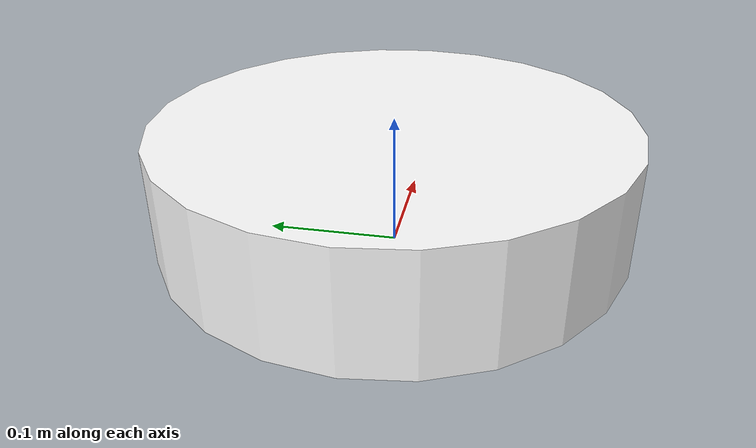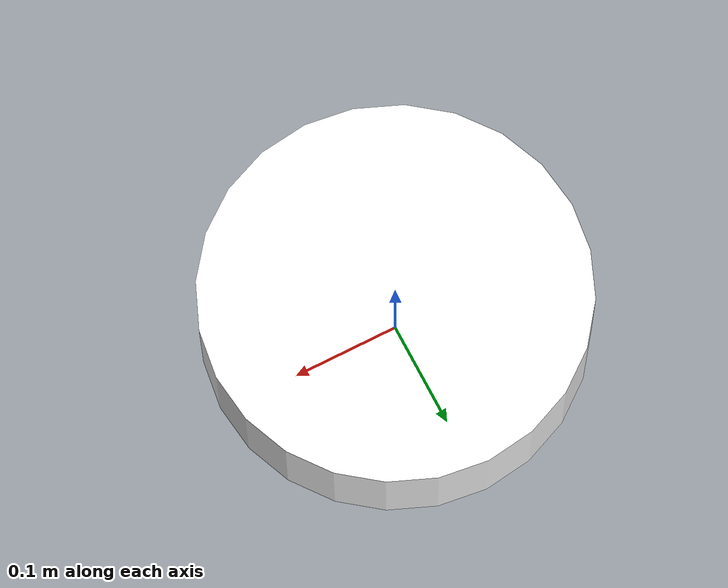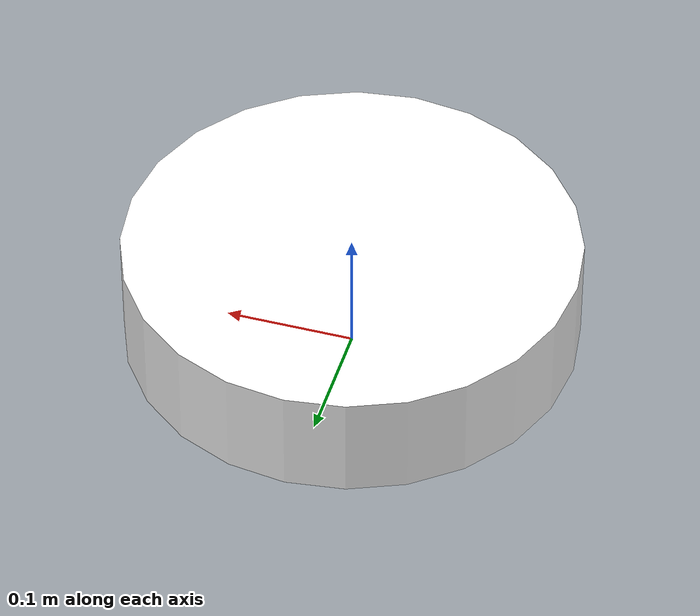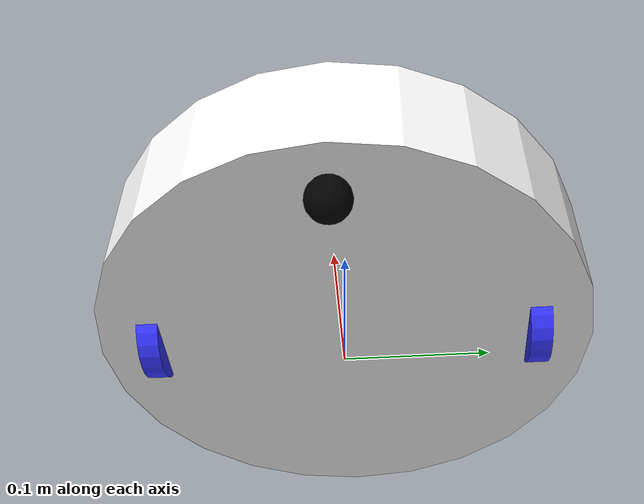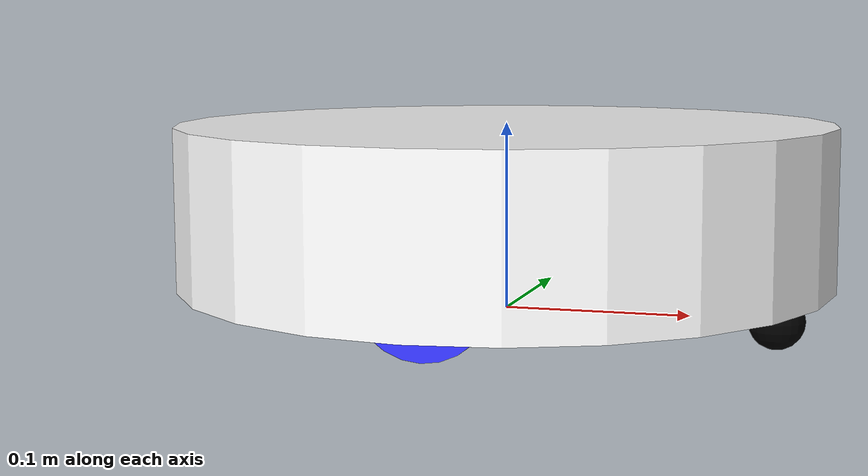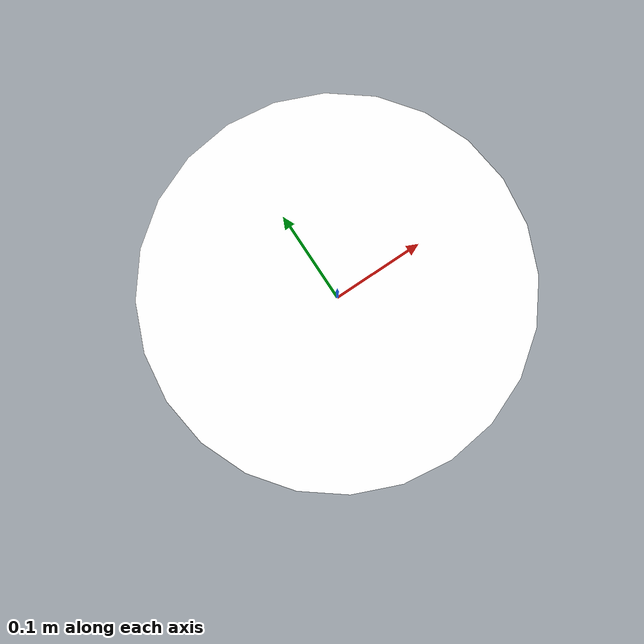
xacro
<?xml version="1.0"?>
<robot xmlns:xacro="http://www.ros.org/wiki/xacro" >

    <xacro:property name="chassis_radius" value="0.175"/>
    <xacro:property name="chassis_height" value="0.085"/>
    <xacro:property name="chassis_mass" value="1.0"/> <xacro:property name="wheel_radius" value="0.035"/>
    <xacro:property name="wheel_width" value="0.015"/>
    <xacro:property name="wheel_mass" value="0.05"/>

    <xacro:property name="wheel_offset_y" value="0.1365"/>

    <xacro:property name="chassis_z_offset" value="0.0575"/>

    <xacro:property name="caster_x_offset" value="0.145"/>

    <material name="white">
        <color rgba="1 1 1 1" />
    </material>
    <material name="orange">
        <color rgba="1 0.3 0.1 1" />
    </material>
    <material name="blue">
        <color rgba="0.2 0.2 1 1" />
    </material>
    <material name="black">
        <color rgba="0 0 0 1" />
    </material>

    <link name="base_link">
    </link>

    <joint name="chassis_joint" type="fixed">
        <parent link="base_link"/>
        <child link="chassis"/>
        <origin xyz="0 0 ${chassis_z_offset}"/>
    </joint>

    <link name="chassis">
        <visual>
            <origin xyz="0 0 0"/>
            <geometry>
                <cylinder radius="${chassis_radius}" length="${chassis_height}"/>
            </geometry>
            <material name="white"/>
        </visual>

        <collision>
            <origin xyz="0 0 0"/>
            <geometry>
                <cylinder radius="${chassis_radius}" length="${chassis_height}"/>
            </geometry>
        </collision>

    </link>

    <joint name="left_wheel_joint" type="continuous">
        <parent link="base_link"/>
        <child link="left_wheel"/>
        <origin xyz="0 ${wheel_offset_y} ${wheel_radius}" rpy="-${pi/2} 0 0"/>
        <axis xyz="0 0 1"/>
    </joint>

    <link name="left_wheel">
        <visual>
            <geometry>
                <cylinder radius="${wheel_radius}" length="${wheel_width}"/>
            </geometry>
            <material name="blue"/>
        </visual>
        <collision>
            <geometry>
                <cylinder radius="${wheel_radius}" length="${wheel_width}"/>
            </geometry>
        </collision>
    </link>

    <joint name="right_wheel_joint" type="continuous">
        <parent link="base_link"/>
        <child link="right_wheel"/>
        <origin xyz="0 ${-wheel_offset_y} ${wheel_radius}" rpy="${pi/2} 0 0"/>
        <axis xyz="0 0 -1"/>
    </joint>

    <link name="right_wheel">
        <visual>
            <geometry>
                <cylinder radius="${wheel_radius}" length="${wheel_width}"/>
            </geometry>
            <material name="blue"/>
        </visual>
        <collision>
            <geometry>
                <cylinder radius="${wheel_radius}" length="${wheel_width}"/>
            </geometry>
        </collision>
    </link>

    <joint name="caster_wheel_joint" type="fixed">
        <parent link="chassis"/>
        <child link="caster_wheel"/>
        <origin xyz="${caster_x_offset} 0 ${-chassis_z_offset}"/>
    </joint>

    <link name="caster_wheel">
        <visual>
            <geometry>
                <sphere radius="0.015"/>
            </geometry>
            <material name="black"/>
        </visual>
        <collision>
            <geometry>
                <sphere radius="0.015"/>
            </geometry>
        </collision>
    </link>

</robot>
